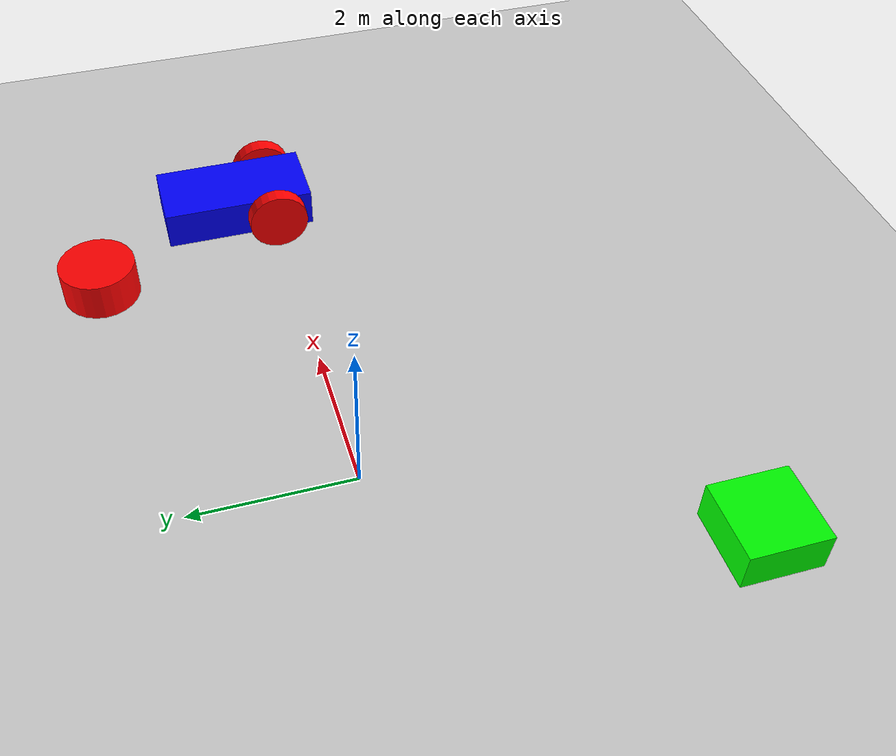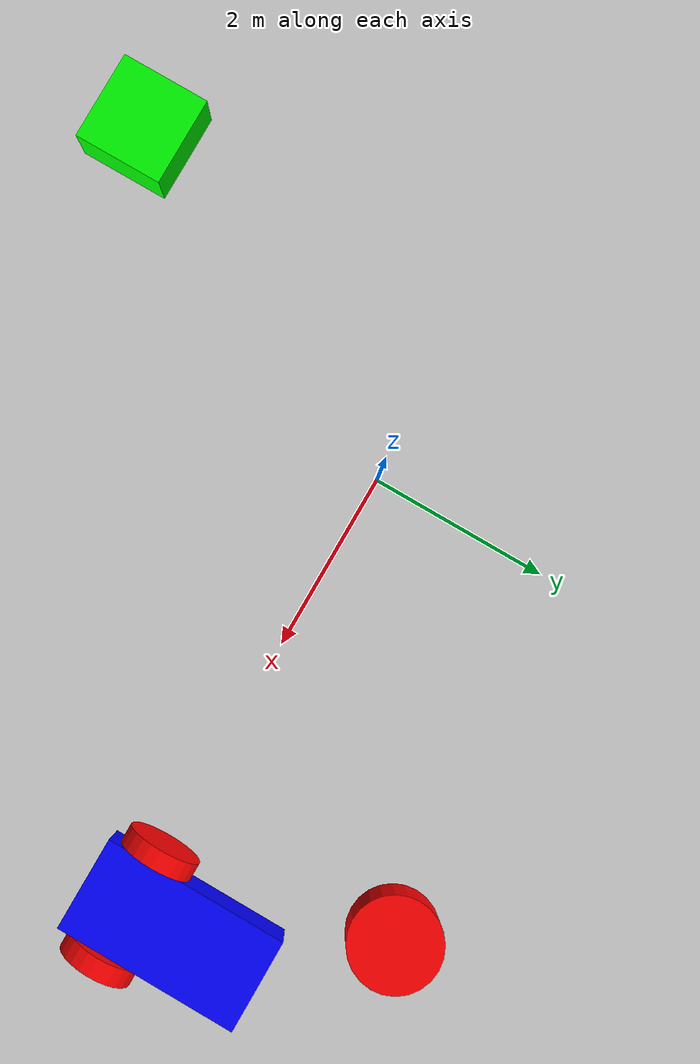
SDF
<?xml version="1.0" ?>
<sdf version="1.10">
    <world name="light_seeking_world">
        <physics name="1ms" type="ignored">
            <max_step_size>0.001</max_step_size>
            <real_time_factor>1.0</real_time_factor>
        </physics>
        <plugin
            filename="gz-sim-physics-system"
            name="gz::sim::systems::Physics">
        </plugin>
        <plugin
            filename="gz-sim-user-commands-system"
            name="gz::sim::systems::UserCommands">
        </plugin>
        <plugin
            filename="gz-sim-scene-broadcaster-system"
            name="gz::sim::systems::SceneBroadcaster">
        </plugin>

        <plugin filename="gz-sim-imu-system"
                name="gz::sim::systems::Imu">
        </plugin>
        <plugin filename="gz-sim-contact-system"
                name="gz::sim::systems::Contact">
        </plugin>

        <!-- Light Path -->
        <light type="point" name="light_1">
            <pose>5.2 0.2 1 0 0 0</pose>
            <diffuse>1 1 1 1</diffuse>
            <specular>0.3 0.3 0.3 1</specular>
            <attenuation>
                <range>4.0</range>
                <constant>0.4</constant>
                <linear>0.15</linear>
                <quadratic>0.008</quadratic>
            </attenuation>
        </light>

        <light type="point" name="light_2">
            <pose>4.1 2.7 1 0 0 0</pose>
            <diffuse>1 1 1 1</diffuse>
            <specular>0.3 0.3 0.3 1</specular>
            <attenuation>
                <range>4.0</range>
                <constant>0.4</constant>
                <linear>0.15</linear>
                <quadratic>0.008</quadratic>
            </attenuation>
        </light>

        <light type="point" name="light_3">
            <pose>2.7 4.4 1 0 0 0</pose>
            <diffuse>1 1 1 1</diffuse>
            <specular>0.3 0.3 0.3 1</specular>
            <attenuation>
                <range>4.0</range>
                <constant>0.4</constant>
                <linear>0.15</linear>
                <quadratic>0.008</quadratic>
            </attenuation>
        </light>

        <light type="point" name="light_4">
            <pose>-0.1 5.3 1 0 0 0</pose>
            <diffuse>1 1 1 1</diffuse>
            <specular>0.3 0.3 0.3 1</specular>
            <attenuation>
                <range>4.0</range>
                <constant>0.4</constant>
                <linear>0.15</linear>
                <quadratic>0.008</quadratic>
            </attenuation>
        </light>

        <light type="point" name="light_5">
            <pose>-2.0 4.5 0.8 0 0 0</pose>
            <diffuse>1 1 1 1</diffuse>
            <specular>0.3 0.3 0.3 1</specular>
            <attenuation>
                <range>4.0</range>
                <constant>0.4</constant>
                <linear>0.15</linear>
                <quadratic>0.008</quadratic>
            </attenuation>
        </light>

        <light type="point" name="light_6">
            <pose>-4.4 2.4 1 0 0 0</pose>
            <diffuse>1 1 1 1</diffuse>
            <specular>0.3 0.3 0.3 1</specular>
            <attenuation>
                <range>4.0</range>
                <constant>0.4</constant>
                <linear>0.15</linear>
                <quadratic>0.008</quadratic>
            </attenuation>
        </light>

        <light type="point" name="light_7">
            <pose>-5.1 -0.3 1 0 0 0</pose>
            <diffuse>1 1 1 1</diffuse>
            <specular>0.3 0.3 0.3 1</specular>
            <attenuation>
                <range>4.0</range>
                <constant>0.4</constant>
                <linear>0.15</linear>
                <quadratic>0.008</quadratic>
            </attenuation>
        </light>

        <light type="point" name="light_8">
            <pose>-4.3 -2.8 1 0 0 0</pose>
            <diffuse>1 1 1 1</diffuse>
            <specular>0.3 0.3 0.3 1</specular>
            <attenuation>
                <range>4.0</range>
                <constant>0.4</constant>
                <linear>0.15</linear>
                <quadratic>0.008</quadratic>
            </attenuation>
        </light>

        <light type="point" name="light_9">
            <pose>-2.4 -4.3 1 0 0 0</pose>
            <diffuse>1 1 1 1</diffuse>
            <specular>0.3 0.3 0.3 1</specular>
            <attenuation>
                <range>4.0</range>
                <constant>0.4</constant>
                <linear>0.15</linear>
                <quadratic>0.008</quadratic>
            </attenuation>
        </light>

        <light type="point" name="light_10">
            <pose>0.2 -5.2 1 0 0 0</pose>
            <diffuse>1 1 1 1</diffuse>
            <specular>0.3 0.3 0.3 1</specular>
            <attenuation>
                <range>4.0</range>
                <constant>0.4</constant>
                <linear>0.15</linear>
                <quadratic>0.008</quadratic>
            </attenuation>
        </light>

        <light type="point" name="light_11">
            <pose>2.5 -4.5 1 0 0 0</pose>
            <diffuse>1 1 1 1</diffuse>
            <specular>0.3 0.3 0.3 1</specular>
            <attenuation>
                <range>4.0</range>
                <constant>0.4</constant>
                <linear>0.15</linear>
                <quadratic>0.008</quadratic>
            </attenuation>
        </light>

        <light type="point" name="light_12">
            <pose>4.4 -2.7 1 0 0 0</pose>
            <diffuse>1 1 1 1</diffuse>
            <specular>0.3 0.3 0.3 1</specular>
            <attenuation>
                <range>4.0</range>
                <constant>0.4</constant>
                <linear>0.15</linear>
                <quadratic>0.008</quadratic>
            </attenuation>
        </light>

        <!-- Ground Plane -->
        <model name="ground_plane">
            <static>true</static>
            <link name="link">
                <collision name="collision">
                    <geometry>
                        <plane>
                            <normal>0 0 1</normal>
                        </plane>
                    </geometry>
                </collision>
                <visual name="visual">
                    <geometry>
                        <plane>
                            <normal>0 0 1</normal>
                            <size>100 100</size>
                        </plane>
                    </geometry>
                    <material>
                        <ambient>0.8 0.8 0.8 1</ambient>
                        <diffuse>0.8 0.8 0.8 1</diffuse>
                        <specular>0.8 0.8 0.8 1</specular>
                    </material>
                </visual>
            </link>
        </model>

        <!-- Obstacles -->
        <model name="obstacle_1">
            <static>true</static>
            <link name="link">
                <pose>4.0 2.5 0 0 0 0</pose>
                <collision name="collision">
                    <geometry>
                        <cylinder>
                            <radius>0.5</radius>
                            <length>1.0</length>
                        </cylinder>
                    </geometry>
                </collision>
                <sensor name='sensor_contact' type='contact'>
                    <contact>
                        <collision>collision</collision>
                    </contact>
                </sensor>
                <visual name="visual">
                    <geometry>
                        <cylinder>
                            <radius>0.5</radius>
                            <length>1.0</length>
                        </cylinder>
                    </geometry>
                    <material>
                        <ambient>1 0 0 1</ambient>
                        <diffuse>1 0 0 1</diffuse>
                    </material>
                </visual>
            </link>
        </model>

        <model name="obstacle_2">
            <static>true</static>
            <link name="link">
                <pose>-2.0 -4.0 0 0 0 0</pose>
                <collision name="collision">
                    <geometry>
                        <box>
                            <size>1.0 1.0 1.0</size>
                        </box>
                    </geometry>
                </collision>
                <sensor name='sensor_contact' type='contact'>
                    <contact>
                        <collision>collision</collision>
                    </contact>
                </sensor>
                <visual name="visual">
                    <geometry>
                        <box>
                            <size>1.0 1.0 1.0</size>
                        </box>
                    </geometry>
                    <material>
                        <ambient>0 1 0 1</ambient>
                        <diffuse>0 1 0 1</diffuse>
                    </material>
                </visual>
            </link>
             <plugin filename="gz-sim-touchplugin-system"
                    name="gz::sim::systems::TouchPlugin">
                <target>light_seeking_robot</target>
                <namespace>wall</namespace>
                <enabled>true</enabled>
                  <time>0.1</time>
            </plugin>
        </model>

        <!-- Robot Model -->
        <model name='light_seeking_robot' canonical_link='chassis'>
            <pose relative_to='world'>5.0 0 0 0 0 1.57</pose>
            <frame name="lidar_frame" attached_to='chassis'>
                <pose>0.8 0 0.5 0 0 0</pose>
            </frame>
                <link name='chassis'>
                <pose relative_to='__model__'>0.5 0 0.4 0 0 0</pose>
                <inertial> <!--inertial properties of the link mass, inertia matix-->
                    <mass>1.14395</mass>
                    <inertia>
                        <ixx>0.095329</ixx>
                        <ixy>0</ixy>
                        <ixz>0</ixz>
                        <iyy>0.381317</iyy>
                        <iyz>0</iyz>
                        <izz>0.476646</izz>
                    </inertia>
                </inertial>

                <visual name='visual'>
                    <geometry>
                        <box>
                            <size>2.0 1.0 0.5</size>
                        </box>
                    </geometry>
                    <!--let's add color to our link-->
                    <material>
                        <ambient>0.0 0.0 1.0 1</ambient>
                        <diffuse>0.0 0.0 1.0 1</diffuse>
                        <specular>0.0 0.0 1.0 1</specular>
                    </material>
                </visual>
                <collision name='collision'>
                    <geometry>
                        <box>
                            <size>2.0 1.0 0.5</size>
                        </box>
                    </geometry>
                </collision>

                <sensor name="imu_sensor" type="imu">
                    <always_on>1</always_on>
                    <update_rate>1</update_rate>
                    <visualize>true</visualize>
                    <topic>imu</topic>
                </sensor>

                <sensor name='gpu_lidar' type='gpu_lidar'>"
                    <pose relative_to='lidar_frame'>0 0 0 0 0 0</pose>
                    <topic>lidar</topic>
                    <update_rate>10</update_rate>
                    <ray>
                        <scan>
                            <horizontal>
                                <samples>640</samples>
                                <resolution>1</resolution>
                                <min_angle>-1.396263</min_angle>
                                <max_angle>1.396263</max_angle>
                            </horizontal>
                            <vertical>
                                <samples>1</samples>
                                <resolution>0.01</resolution>
                                <min_angle>0</min_angle>
                                <max_angle>0</max_angle>
                            </vertical>
                        </scan>
                        <range>
                            <min>0.08</min>
                            <max>10.0</max>
                            <resolution>0.01</resolution>
                        </range>
                    </ray>
                    <always_on>1</always_on>
                    <visualize>true</visualize>
                </sensor>

                <!-- light sensor -->

                <sensor name="camera" type="camera">
                    <pose relative_to="lidar_frame">0.5 0 0.3 0 0 0</pose>
                    <visualize>true</visualize>
                    <update_rate>30</update_rate>
                    <camera>
                        <horizontal_fov>1.5708</horizontal_fov> <!-- 90 degrees -->
                        <image>
                            <format>R8G8B8</format>
                            <width>640</width>
                            <height>480</height>
                        </image>
                        <clip>
                            <near>0.1</near>
                            <far>100</far>
                        </clip>
                    </camera>
                    <plugin filename="libgazebo_ros_camera.so" name="camera_plugin">
                        <ros>
                            <namespace>camera</namespace>
                            <topic_name>image_raw</topic_name>
                            <frame_name>camera_optical</frame_name>
                        </ros>
                        <format>RGB8</format>
                    </plugin>

                </sensor>

            </link>

           <frame name="camera_optical" attached_to="chassis">
                <pose relative_to="lidar_frame">0.5 0 0.3 0 -1.5708 1.5708</pose>
            </frame>

            <!-- left wheel -->
            <link name='left_wheel'>
                <pose relative_to="chassis">-0.5 0.6 0 -1.5707 0 0</pose>
                <inertial>
                    <mass>1</mass>
                    <inertia>
                        <ixx>0.043333</ixx>
                        <ixy>0</ixy>
                        <ixz>0</ixz>
                        <iyy>0.043333</iyy>
                        <iyz>0</iyz>
                        <izz>0.08</izz>
                    </inertia>
                </inertial>

                <visual name='visual'>
                    <geometry>
                        <cylinder>
                            <radius>0.4</radius>
                            <length>0.2</length>
                        </cylinder>
                    </geometry>
                    <material>
                        <ambient>1.0 0.0 0.0 1</ambient>
                        <diffuse>1.0 0.0 0.0 1</diffuse>
                        <specular>1.0 0.0 0.0 1</specular>
                    </material>
                </visual>
                <collision name='collision'>
                    <geometry>
                        <cylinder>
                            <radius>0.4</radius>
                            <length>0.2</length>
                        </cylinder>
                    </geometry>
                </collision>
            </link>
            <!--The same as left wheel but with different position-->
                <link name='right_wheel'>
                    <pose relative_to="chassis">-0.5 -0.6 0 -1.5707 0 0</pose> <!--angles are in radian-->
                    <inertial>
                        <mass>1</mass>
                        <inertia>
                            <ixx>0.043333</ixx>
                            <ixy>0</ixy>
                            <ixz>0</ixz>
                            <iyy>0.043333</iyy>
                            <iyz>0</iyz>
                            <izz>0.08</izz>
                        </inertia>
                    </inertial>
                    <visual name='visual'>
                        <geometry>
                            <cylinder>
                                <radius>0.4</radius>
                                <length>0.2</length>
                            </cylinder>
                        </geometry>
                        <material>
                            <ambient>1.0 0.0 0.0 1</ambient>
                            <diffuse>1.0 0.0 0.0 1</diffuse>
                            <specular>1.0 0.0 0.0 1</specular>
                        </material>
                    </visual>
                    <collision name='collision'>
                        <geometry>
                            <cylinder>
                                <radius>0.4</radius>
                                <length>0.2</length>
                            </cylinder>
                        </geometry>
                    </collision>
                </link>
            <frame name="caster_frame" attached_to='chassis'>
                <pose>0.8 0 -0.2 0 0 0</pose>
            </frame>
            <!--caster wheel-->
                <link name='caster'>
                    <pose relative_to='caster_frame'/>
                    <inertial>
                        <mass>1</mass>
                        <inertia>
                            <ixx>0.016</ixx>
                            <ixy>0</ixy>
                            <ixz>0</ixz>
                            <iyy>0.016</iyy>
                            <iyz>0</iyz>
                            <izz>0.016</izz>
                        </inertia>
                    </inertial>
                    <visual name='visual'>
                        <geometry>
                            <sphere>
                                <radius>0.2</radius>
                            </sphere>
                        </geometry>
                        <material>
                            <ambient>0.0 1 0.0 1</ambient>
                            <diffuse>0.0 1 0.0 1</diffuse>
                            <specular>0.0 1 0.0 1</specular>
                        </material>
                    </visual>
                    <collision name='collision'>
                        <geometry>
                            <sphere>
                                <radius>0.2</radius>
                            </sphere>
                        </geometry>
                    </collision>
                </link>
            <joint name='left_wheel_joint' type='revolute'>
                <pose relative_to='left_wheel'/>
                    <parent>chassis</parent>
                    <child>left_wheel</child>
                    <axis>
                    <xyz expressed_in='__model__'>0 1 0</xyz> <!--can be defined as any frame or even arbitrary frames-->
                    <limit>
                        <lower>-1.79769e+308</lower>    <!--negative infinity-->
                        <upper>1.79769e+308</upper>     <!--positive infinity-->
                    </limit>
                </axis>
            </joint>
                <joint name='right_wheel_joint' type='revolute'>
                <pose relative_to='right_wheel'/>
                <parent>chassis</parent>
                <child>right_wheel</child>
                <axis>
                    <xyz expressed_in='__model__'>0 1 0</xyz>
                    <limit>
                        <lower>-1.79769e+308</lower>    <!--negative infinity-->
                        <upper>1.79769e+308</upper>     <!--positive infinity-->
                    </limit>
                </axis>
            </joint>
            <joint name='caster_wheel' type='ball'>
                <parent>chassis</parent>
                <child>caster</child>
            </joint>

          <plugin
            filename="gz-sim-diff-drive-system"
            name="gz::sim::systems::DiffDrive">
            <left_joint>left_wheel_joint</left_joint>
            <right_joint>right_wheel_joint</right_joint>
            <wheel_separation>1.2</wheel_separation>
            <wheel_radius>0.4</wheel_radius>
            <odom_publish_frequency>1</odom_publish_frequency>
            <topic>cmd_vel</topic>
        </plugin>

        <plugin filename="gz-sim-triggered-publisher-system"
                name="gz::sim::systems::TriggeredPublisher">
            <input type="gz.msgs.Boolean" topic="/wall/touched">
                <match>data: true</match>
            </input>
            <output type="gz.msgs.Twist" topic="/cmd_vel">
                linear: {x: 0.0}, angular: {z: 0.0}
            </output>
        </plugin>

        </model>
    </world>
</sdf>
